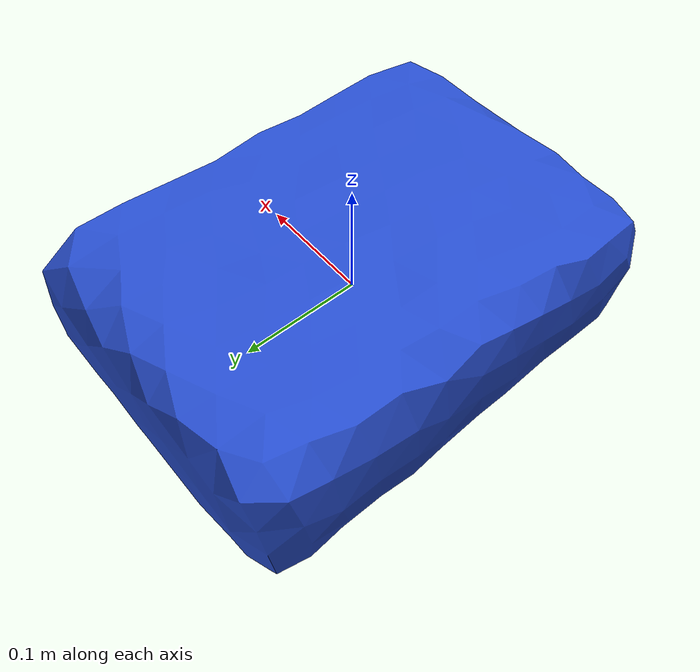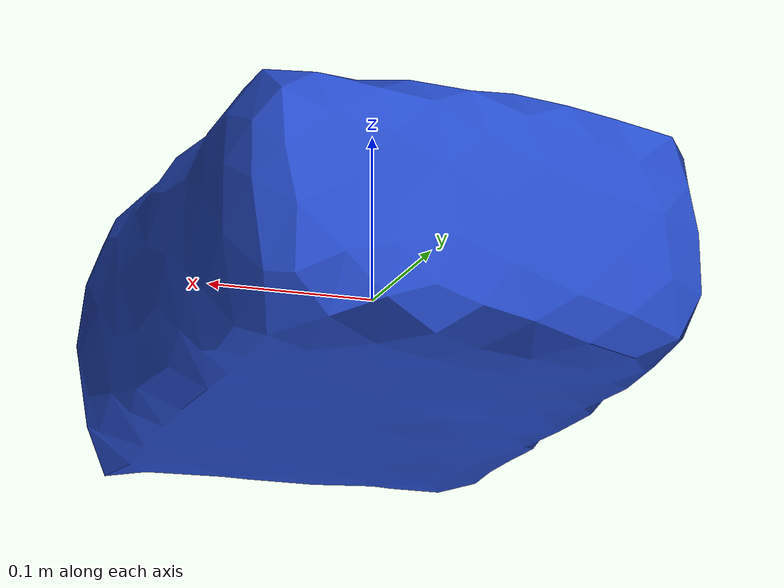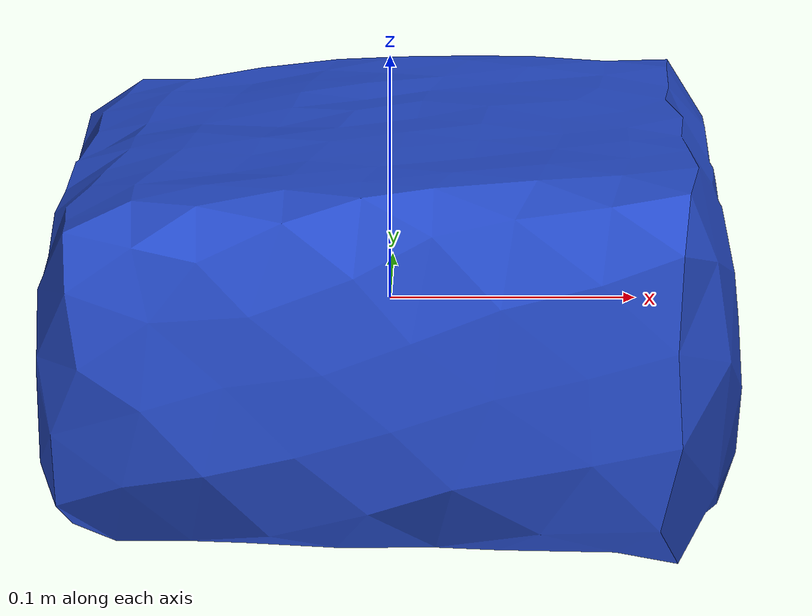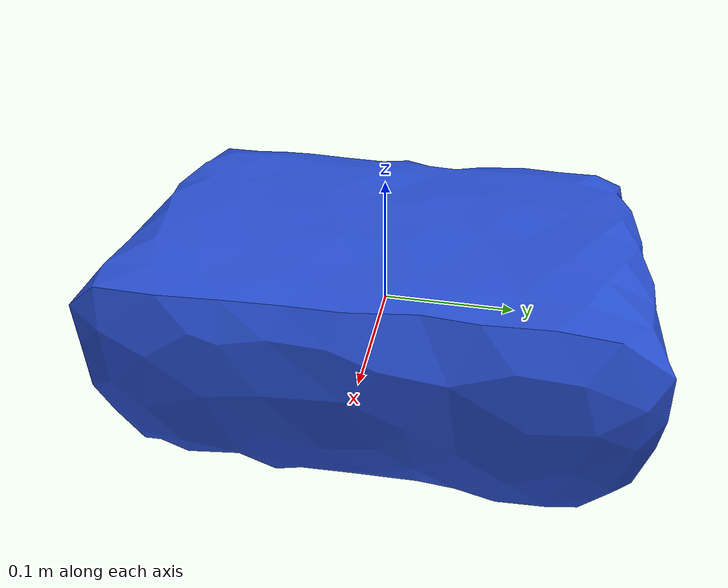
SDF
<?xml version="1.0" ?><sdf version="1.5"><model name="dhl-box-blue-horizontal">
<link name="link">
<pose>0 0 0 0 0 0</pose>
<inertial>
<pose>4.99189e-07 0 0 0 0 0</pose>
<mass>0.25</mass>
<inertia>
<ixx>0.00363607</ixx>
<ixy>0</ixy><iyy>0.00211491</iyy>
<ixz>0</ixz><iyz>0</iyz><izz>0.00473607</izz>
</inertia>
</inertial>
<visual name="visual">
<pose>0 0 0 0 0 0</pose>
<geometry><mesh><uri>model://dhl-box-blue-horizontal/meshes/dhl-box-blue-horizontal.dae</uri></mesh></geometry>
<material><script><uri>file://media/materials/scripts/gazebo.material</uri><name>Gazebo/BlueGlow</name></script></material></visual>
<collision name="collision"><pose>0 0 0 0 0 0</pose><geometry><mesh><uri>model://dhl-box-blue-horizontal/meshes/dhl-box-blue-horizontal.dae</uri></mesh></geometry>
<surface><friction><ode><mu>1.000000</mu><mu2>1.000000</mu2></ode></friction></surface>
</collision></link></model></sdf>
